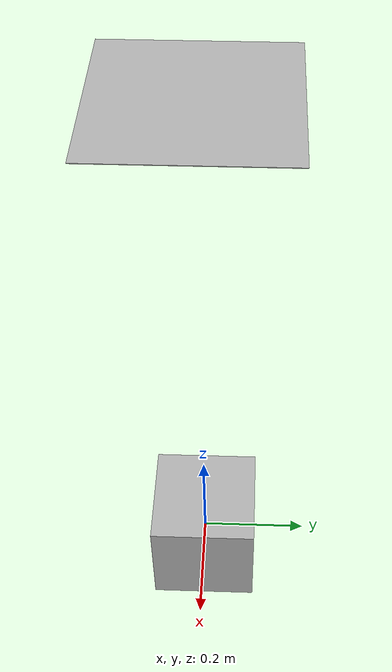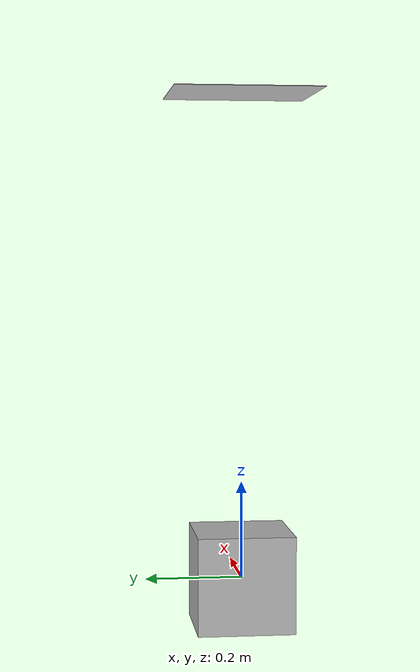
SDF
<?xml version="1.0"?>
<sdf version="1.7">
  <model name="child_model">
    <link name='child_link'>
      <pose>0 0 0 0 0 0</pose>
      <inertial>
        <pose>0 0 0 0 0 0</pose>
        <mass>1.0</mass>
        <inertia>
          <ixx>0.01</ixx>
          <ixy>0.0</ixy>
          <ixz>0.0</ixz>
          <iyy>0.01</iyy>
          <iyz>0.0</iyz>
          <izz>0.01</izz>
        </inertia>
      </inertial>
      <visual name='child_visual'>
        <pose>0 0 0 0 0 0</pose>
        <geometry>
          <box>
            <size>0.2 0.2 0.2</size>
          </box>
        </geometry>
      </visual>
      <collision name='child_collision'>
        <pose>0 0 0 0 0 0</pose>
        <geometry>
          <box>
            <size>0.2 0.2 0.2</size>
          </box>
        </geometry>
      </collision>
    </link>

    <model name='grandchild_model_in_child'>
      <pose>0.0 0.0 1.0 0.0 0.0 0.0</pose>
      <static>1</static>
      <include>
        <uri>model://grandchild</uri>
      </include>
    </model>
    <static>1</static>
  </model>
</sdf>

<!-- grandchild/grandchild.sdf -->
<sdf version="1.7">
  <model name="grandchild_model">
    <pose relative_to="">0 0 0 0 0 0</pose>
    <static>true</static>
    <link name="grandchild_link">
      <pose relative_to="">0 0 0 0 0 0</pose>
      <inertial>
        <mass>0.0</mass>
        <inertia>
          <ixx>0.01</ixx>
          <ixy>0.0</ixy>
          <ixz>0.0</ixz>
          <iyy>0.01</iyy>
          <iyz>0.0</iyz>
          <izz>0.01</izz>
        </inertia>
      </inertial>
      <collision name="grandchild_collision">
        <geometry>
          <box>
            <size>0.3 0.3 0.001</size>
          </box>
        </geometry>
      </collision>
      <visual name="grandchild_visual">
        <cast_shadows>true</cast_shadows>
        <geometry>
          <box>
            <size>0.3 0.3 0.001</size>
          </box>
        </geometry>
        <material>
          <script>
            <uri>model://grandchild/materials/scripts</uri>
            <uri>model://grandchild/materials/textures</uri>
            <name>grandchild</name>
          </script>
        </material>
      </visual>
    </link>
  </model>
</sdf>
